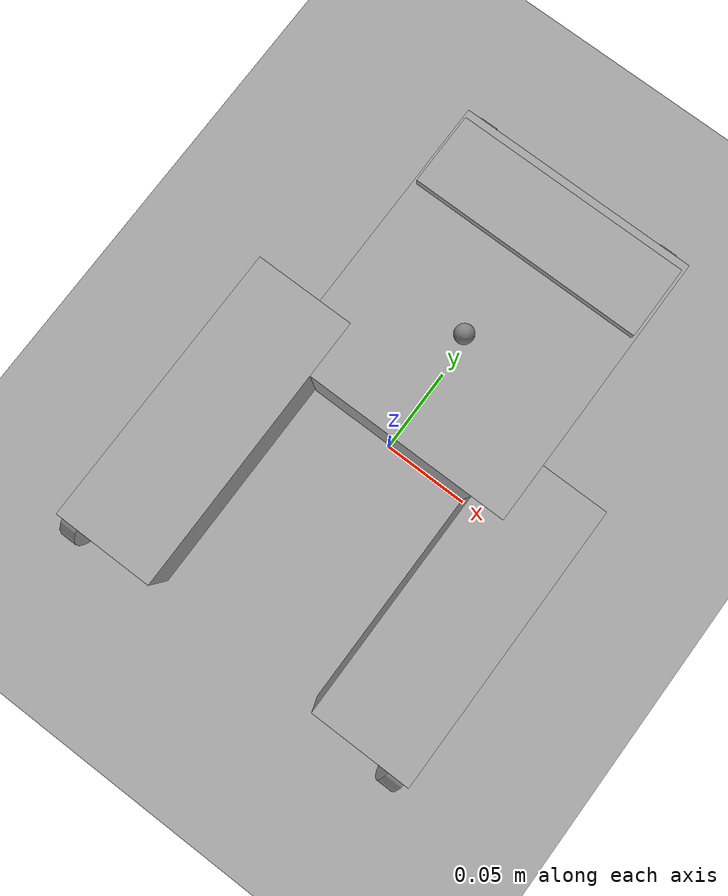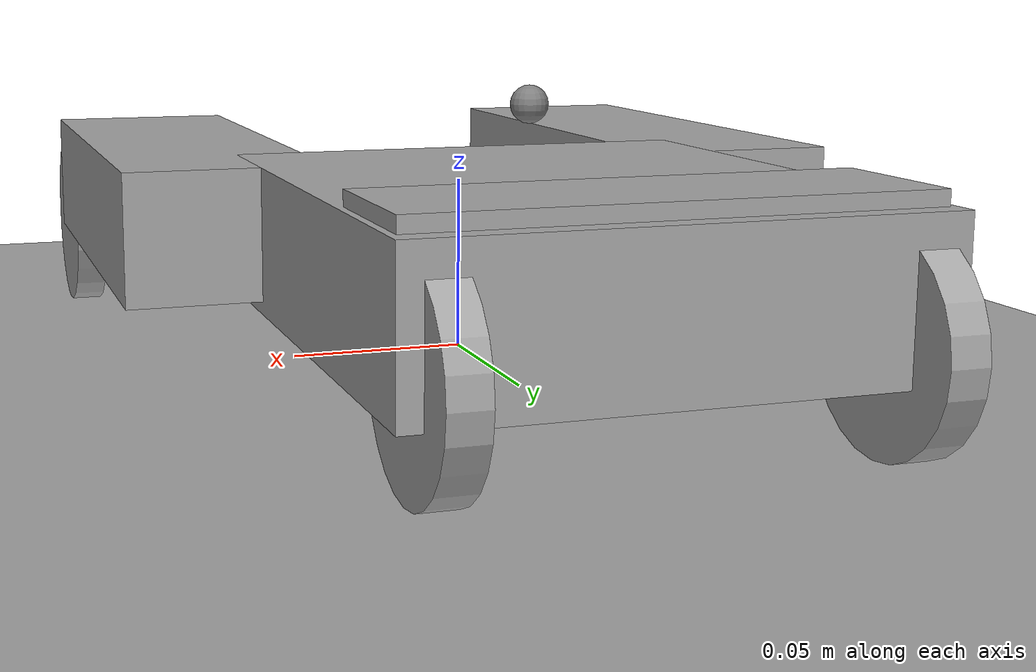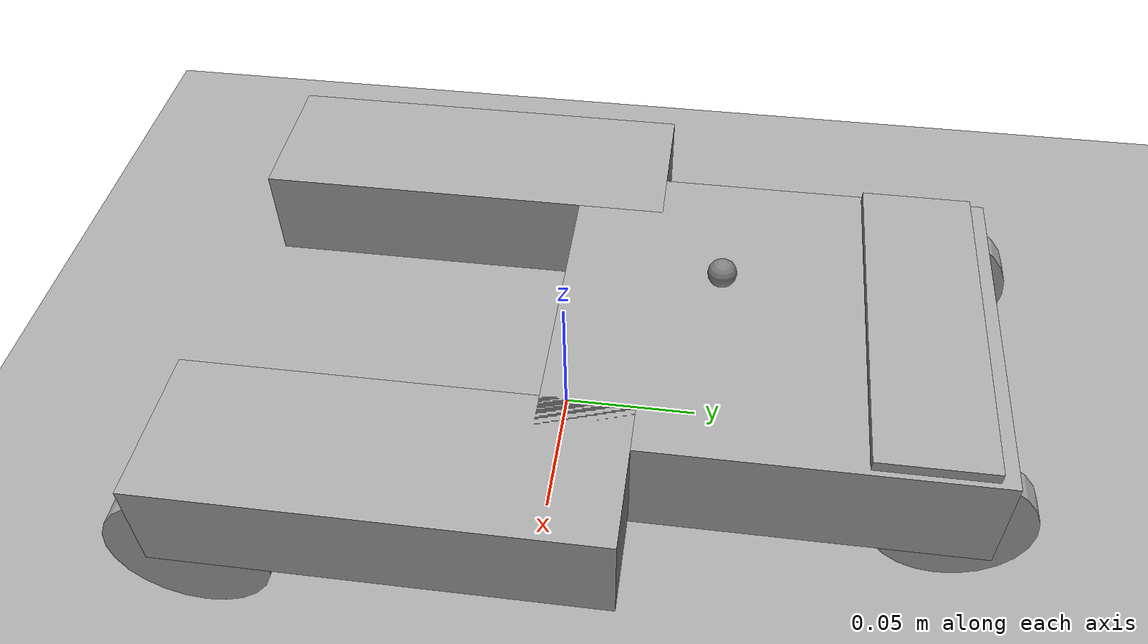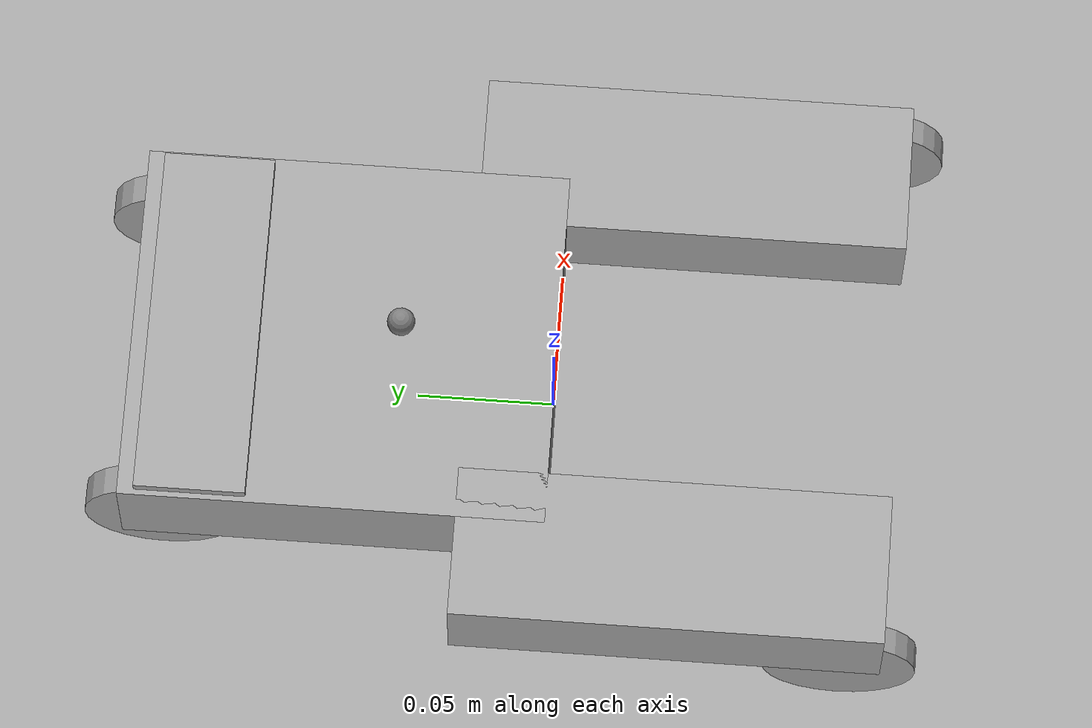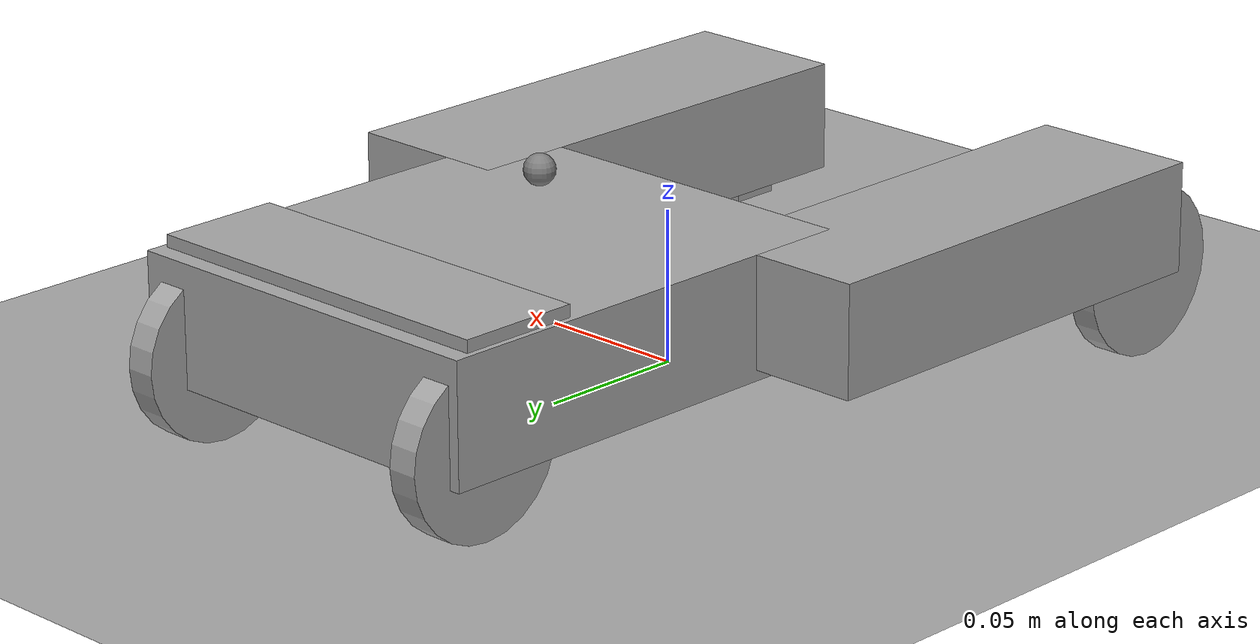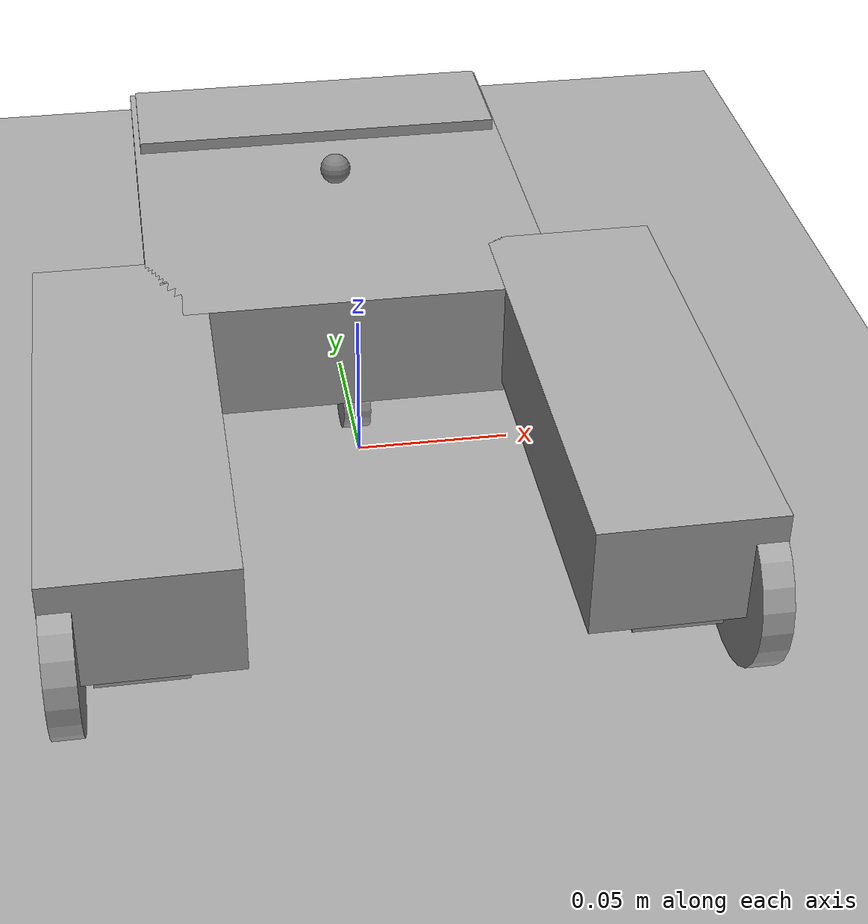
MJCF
<mujoco model="tombot_ctrlrange_200_arm_10rpm_half_torque">
  <compiler angle="radian" coordinate="local" inertiafromgeom="true"/>
  <option timestep="0.002" gravity="0 0 -9.81" integrator="RK4"/>

  <default>
    <joint damping="0.08" armature="0.002"/>
    <geom rgba="0.65 0.65 0.65 1"
      friction="0.8 0.02 0.002"
      condim="3"
      density="800"
      contype="2"
      conaffinity="1"/>
    <motor ctrllimited="true" ctrlrange="-200 200"/>
  </default>

  <asset>
    <texture name="grid" type="2d" builtin="checker" rgb1="0.2 0.2 0.2" rgb2="0.3 0.3 0.3" width="300" height="300"/>
    <material name="ground_mat" texture="grid" texrepeat="5 5"/>
    <material name="chassis_mat" rgba="0.35 0.35 0.38 1"/>
    <material name="arm_mat" rgba="0.2 0.35 0.75 1"/>
    <material name="wheel_mat" rgba="0.04 0.04 0.04 1"/>
    <material name="obstacle_mat" rgba="0.55 0.30 0.18 1"/>
</asset>

  <worldbody>
    <light name="top" pos="0 0 1.2" dir="0 0 -1" diffuse="0.9 0.9 0.9"/>
    <camera name="fixed" pos="0 -0.55 0.28" xyaxes="1 0 0 0 0.35 1"/>
    <geom name="floor"
      type="plane"
      size="2 2 0.01"
      material="ground_mat"
      contype="1"
      conaffinity="2"/>

    <!-- Higher step obstacle for traversal. Robot front points toward negative y in this draft.
         size = half-dimensions: 0.45m wide, 0.05m deep, 0.035m high. -->

    <!-- Body height set so the lower face of main_frame_box is 19.8 mm above the ground.
         main_frame bottom = robot_z + 0.0182 - 0.0198 = 0.0198 m, so robot_z = 0.0214 m. -->
    <body name="central_hub" pos="0 0 0.0214">
      <freejoint name="root"/>
      <site name="imu_site" pos="0 0.055 0.055" size="0.005"/>

      <!-- STEP BREP #89: main frame. Coarse box substitute, not exact CAD mesh. -->
      <geom name="main_frame_box" type="box" pos="0 0.0755 0.0182" size="0.066 0.0765 0.0198" material="chassis_mat" mass="0.28"/>

      <!-- No artificial center ballast: extra mass is assigned to the rear/two-wheel thick leg assembly. -->

      <body name="middle_support_wheel" pos="0 0.016 -0.0094">
        <joint name="middle_support_wheel_spin" type="hinge" axis="1 0 0" limited="false" damping="0.015"/>
        <geom name="middle_support_wheel_geom" type="cylinder" euler="0 1.57079632679 0" size="0.012 0.0045" material="wheel_mat" mass="0.018"/>
      </body>

      <!-- Thick rear/two-wheel leg mass. This replaces the old front-arm ballast interpretation.
           It represents the heavier rear assembly that carries the two rear wheels, shifting COM toward +y. -->
      <geom name="rear_two_wheel_thick_leg_mass" type="box" pos="0 0.126 0.030" size="0.064 0.020 0.012" material="chassis_mat" mass="0.150" contype="0" conaffinity="0"/>

      <!-- Rear wheels, STEP BREP #90 and #94. Cylinder axis is along local x. Wheel diameter = 55 mm. -->
      <body name="rear_right_wheel" pos="0.055 0.138000002 0.0061">
        <joint name="rear_right_wheel_spin" type="hinge" axis="1 0 0" limited="false" damping="0.02"/>
        <geom name="rear_right_wheel_geom" type="cylinder" euler="0 1.57079632679 0" size="0.0275 0.005" material="wheel_mat" mass="0.045"/>
      </body>
      <body name="rear_left_wheel" pos="-0.0575 0.138000002 0.0061">
        <joint name="rear_left_wheel_spin" type="hinge" axis="1 0 0" limited="false" damping="0.02"/>
        <geom name="rear_left_wheel_geom" type="cylinder" euler="0 1.57079632679 0" size="0.0275 0.005" material="wheel_mat" mass="0.045"/>
      </body>

      <!-- Right transformable front arm, STEP BREP #91 + #92 + #93. Pivot inferred from arm upper end. -->
      <body name="front_right_arm" pos="0.075 0.016 0.02">
        <joint name="front_right_arm_hinge" type="hinge" axis="1 0 0" limited="true" range="-2.09439510 2.09439510" damping="0.18"/>
        <geom name="front_right_arm_box" type="box" pos="0 -0.0625 0" size="0.0275 0.0775 0.018" material="arm_mat" mass="0.055"/>
        <!-- Front transform motor/gearbox mount: kept symmetric/light; the thick two-wheel leg is the rear assembly. -->
        <geom name="front_right_motor_mount" type="box" pos="0.0017 -0.123 -0.0139" size="0.0135 0.008 0.014" material="chassis_mat" mass="0.025"/>
        <body name="front_right_wheel" pos="0.022775 -0.125 -0.0139">
          <joint name="front_right_wheel_spin" type="hinge" axis="1 0 0" limited="false" damping="0.02"/>
          <geom name="front_right_wheel_geom" type="cylinder" euler="0 1.57079632679 0" size="0.0275 0.004575" material="wheel_mat" mass="0.040"/>
        </body>
      </body>

      <!-- Left transformable front arm, STEP BREP #95 + mirrored mount + #96. -->
      <body name="front_left_arm" pos="-0.075 0.016 0.02">
        <joint name="front_left_arm_hinge" type="hinge" axis="1 0 0" limited="true" range="-2.09439510 2.09439510" damping="0.18"/>
        <geom name="front_left_arm_box" type="box" pos="0 -0.0625 0" size="0.0275 0.0775 0.018" material="arm_mat" mass="0.055"/>
        <!-- Front transform motor/gearbox mount: kept symmetric/light; the thick two-wheel leg is the rear assembly. -->
        <geom name="front_left_motor_mount" type="box" pos="-0.0017 -0.123 -0.0139" size="0.0135 0.008 0.014" material="chassis_mat" mass="0.025"/>
        <body name="front_left_wheel" pos="-0.022775 -0.125 -0.0139">
          <joint name="front_left_wheel_spin" type="hinge" axis="1 0 0" limited="false" damping="0.02"/>
          <geom name="front_left_wheel_geom" type="cylinder" euler="0 1.57079632679 0" size="0.0275 0.004575" material="wheel_mat" mass="0.040"/>
        </body>
      </body>
    </body>
  </worldbody>

  <actuator>
    <motor name="rear_right_drive" joint="rear_right_wheel_spin" gear="0.000465815" ctrllimited="true" ctrlrange="-200 200"/>
    <motor name="rear_left_drive" joint="rear_left_wheel_spin" gear="0.000465815" ctrllimited="true" ctrlrange="-200 200"/>
    <motor name="front_right_drive" joint="front_right_wheel_spin" gear="0.000465815" ctrllimited="true" ctrlrange="-200 200"/>
    <motor name="front_left_drive" joint="front_left_wheel_spin" gear="0.000465815" ctrllimited="true" ctrlrange="-200 200"/>

    <velocity name="front_right_transform" joint="front_right_arm_hinge"
              gear="190.985932" kv="5.0"
              ctrllimited="true" ctrlrange="-200 200"
              forcelimited="true" forcerange="-0.003080850 0.003080850"/>
    <velocity name="front_left_transform" joint="front_left_arm_hinge"
              gear="190.985932" kv="5.0"
              ctrllimited="true" ctrlrange="-200 200"
              forcelimited="true" forcerange="-0.003080850 0.003080850"/>
  </actuator>

  <sensor>
    <gyro name="body_gyro" site="imu_site"/>
    <accelerometer name="body_acc" site="imu_site"/>
    <framequat name="body_quat" objtype="site" objname="imu_site"/>
    <jointvel name="rear_right_wheel_vel" joint="rear_right_wheel_spin"/>
    <jointvel name="rear_left_wheel_vel" joint="rear_left_wheel_spin"/>
    <jointvel name="front_right_wheel_vel" joint="front_right_wheel_spin"/>
    <jointvel name="front_left_wheel_vel" joint="front_left_wheel_spin"/>
    <jointvel name="middle_support_wheel_vel" joint="middle_support_wheel_spin"/>
    <jointpos name="front_right_arm_angle" joint="front_right_arm_hinge"/>
    <jointpos name="front_left_arm_angle" joint="front_left_arm_hinge"/>
    <jointvel name="front_right_arm_vel" joint="front_right_arm_hinge"/>
    <jointvel name="front_left_arm_vel" joint="front_left_arm_hinge"/>
  </sensor>
</mujoco>
